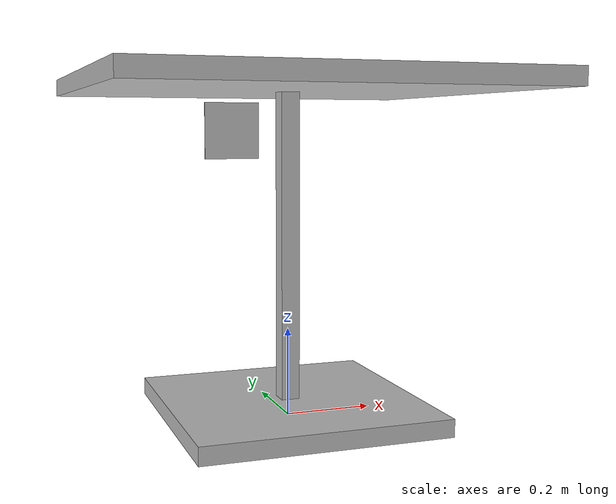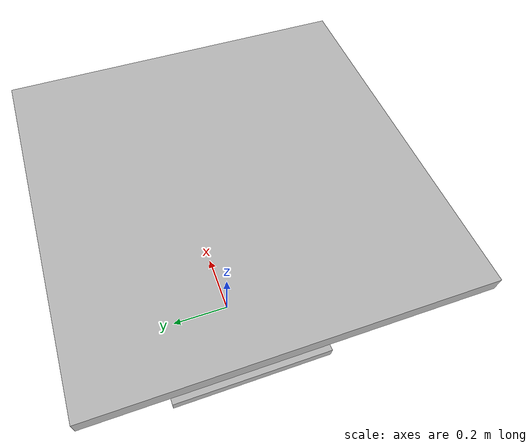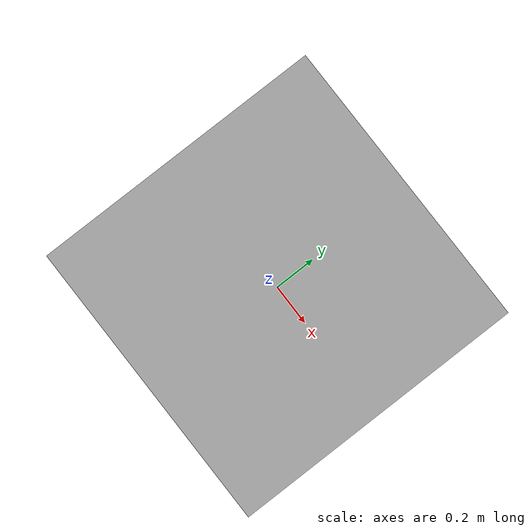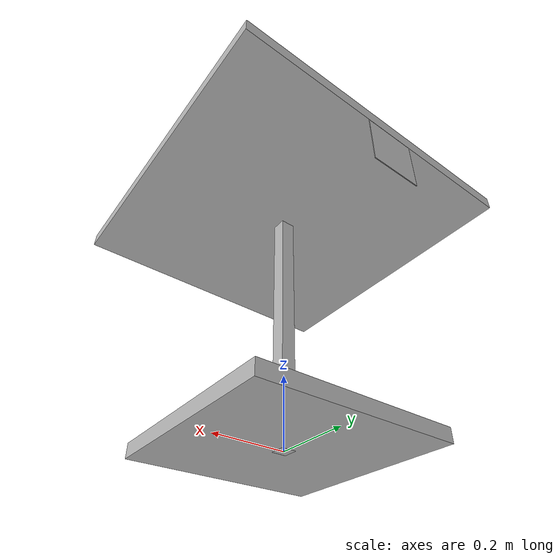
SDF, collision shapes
<?xml version="1.0" ?>
<sdf version="1.5">
  <model name="table_ArUco">

    <include>
      <uri>model://cafe_table</uri>
      <pose>0 0 0 0 0 0</pose>
    </include>

    <include>
      <uri>model://ArUco</uri>
      <pose>0 0.46 0.549 0 0 0</pose>
    </include>

  </model>
</sdf>

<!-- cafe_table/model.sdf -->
<sdf version="1.5">
  <model name="cafe_table">
    <static>true</static>
    <link name="link">
      <collision name="surface">
        <pose>0 0 0.755 0 0 0</pose>
        <geometry>
          <box>
            <size>0.913 0.913 0.04</size>
          </box>
        </geometry>
      </collision>

      <collision name="column">
        <pose>0 0 0.37 0 0 0</pose>
        <geometry>
          <box>
            <size>0.042 0.042 0.74</size>
          </box>
        </geometry>
      </collision>

      <collision name="base">
        <pose>0 0 0.02 0 0 0</pose>
        <geometry>
          <box>
            <size>0.56 0.56 0.04</size>
          </box>
        </geometry>
      </collision>

      <visual name="visual">
        <geometry>
          <mesh>
            <uri>model://../model_source/models/cafe_table/meshes/cafe_table.dae</uri>
          </mesh>
        </geometry>
      </visual>
    </link>
  </model>
</sdf>

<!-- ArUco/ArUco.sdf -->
<sdf version='1.4'>
  <model name="ArUco">
	<static>true</static>
          <link name='ArUco25_link'>
            <pose>0 0 .1 0 0 0</pose>

            <collision name='collision'>
              <geometry>
                <box>
                  <size>0.15 0.002 0.15</size>
                </box>
              </geometry>
            </collision>

            <visual name='visual'>
	      <lighting>0</lighting>
              <geometry>
                <mesh>
            	  <uri>model://ArUco/meshes/Aruco25.dae</uri>
		  <scale>1 1 1</scale>
          	</mesh>
              </geometry>
            </visual>
          </link>
  </model>
</sdf>
